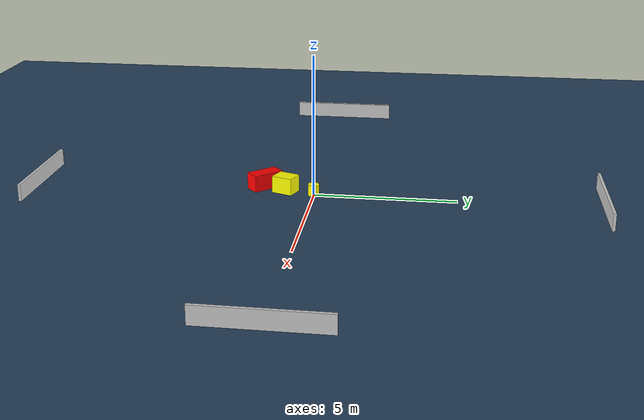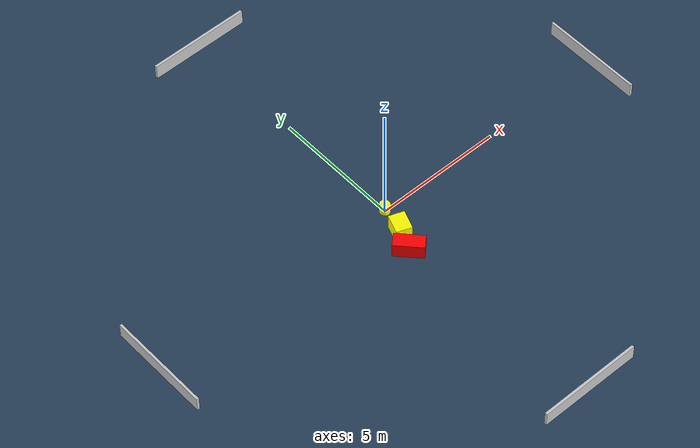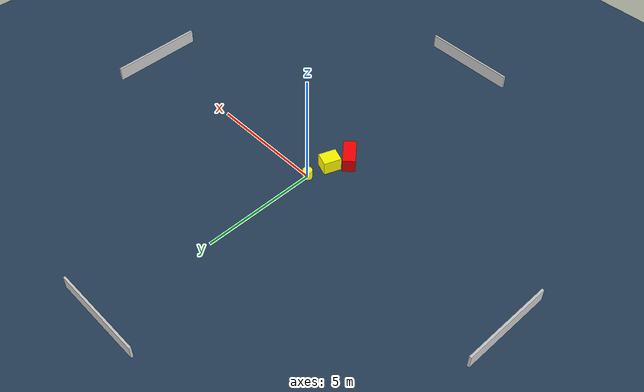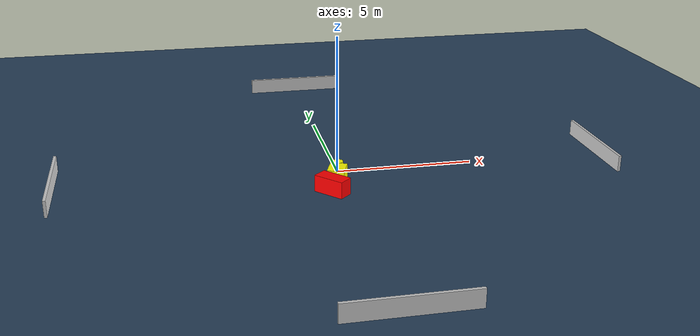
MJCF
<?xml version="1.0" ?>
<mujoco model="generated_environment">
  <option timestep="0.01" integrator="RK4" cone="elliptic"/>
  <default>
    <geom density="1"/>
  </default>
  <asset>
    <texture builtin="gradient" height="3072" name="skybox" rgb1="0.3 0.5 0.7" rgb2="0 0 0" type="skybox" width="512"/>
    <texture builtin="checker" height="300" name="groundplane" rgb1="0.2 0.3 0.4" rgb2="0.1 0.2 0.3" type="2d" width="300"/>
    <material name="groundplane" reflectance="0.2" texrepeat="5 5" texture="groundplane"/>
  </asset>
  <worldbody>
    <light dir="0 0 -1" directional="true" pos="0 0 1.5"/>
    <geom condim="3" friction="0.5 0.005 0.001" material="groundplane" name="floor" pos="0 0 0" size="0 0 0.05" type="plane"/>
    <body name="walls">
      <geom name="wall_1" condim="4" pos="-10.0 0.0 0.3" rgba="0.800000011920929 0.800000011920929 0.800000011920929 1.0" size="0.05 2.0 0.3" type="box"/>
      <geom name="wall_2" condim="4" pos="10.0 0.0 0.3" rgba="0.800000011920929 0.800000011920929 0.800000011920929 1.0" size="0.05 2.0 0.3" type="box"/>
      <geom name="wall_3" condim="4" pos="0.0 -10.0 0.3" rgba="0.800000011920929 0.800000011920929 0.800000011920929 1.0" size="2.0 0.05 0.3" type="box"/>
      <geom name="wall_4" condim="4" pos="0.0 10.0 0.3" rgba="0.800000011920929 0.800000011920929 0.800000011920929 1.0" size="2.0 0.05 0.3" type="box"/>
    </body>
    <body name="robot">
      <joint name="joint_x" type="slide" pos="0 0 0" axis="1 0 0"/>
      <joint name="joint_y" type="slide" pos="0 0 0" axis="0 1 0"/>
      <geom name="robot" type="cylinder" pos="0.0 0.0 0.2" size="0.2 0.2 0.0" mass="5.0" friction="1.0 0.005 0.0001" condim="4" rgba="1.0 1.0 0.0 1.0"/>
    </body>
    <body name="obstacle_1_movable">
      <geom name="obstacle_1_movable" condim="4" pos="-0.2189639952006225 -1.0312386262342719 0.3" euler="0 0 339.6333973882638" friction="0.0 0.005 0.001" rgba="1.0 1.0 0.0 1.0" size="0.30379204053138353 0.37663122974504426 0.3" type="box" mass="0.1"/>
      <joint type="free"/>
    </body>
    <body name="obstacle_2_static">
      <geom name="obstacle_2_static" condim="4" pos="-0.5368883956403481 -1.8277091917949952 0.3" euler="0 0 132.56751202085135" friction="0.0 0.005 0.001" rgba="1.0 0.0 0.0 1.0" size="0.5683081338018854 0.2681367202784803 0.3" type="box"/>
    </body>
  </worldbody>
  <actuator>
    <motor name="actuator_x" joint="joint_x" gear="1" ctrlrange="-1 1"/>
    <motor name="actuator_y" joint="joint_y" gear="1" ctrlrange="-1 1"/>
  </actuator>
</mujoco>
